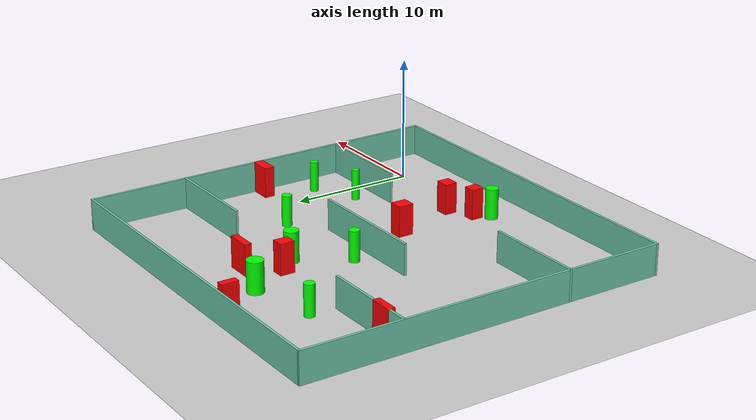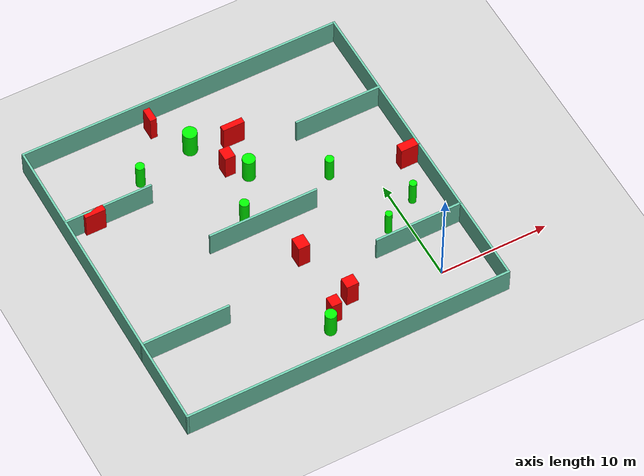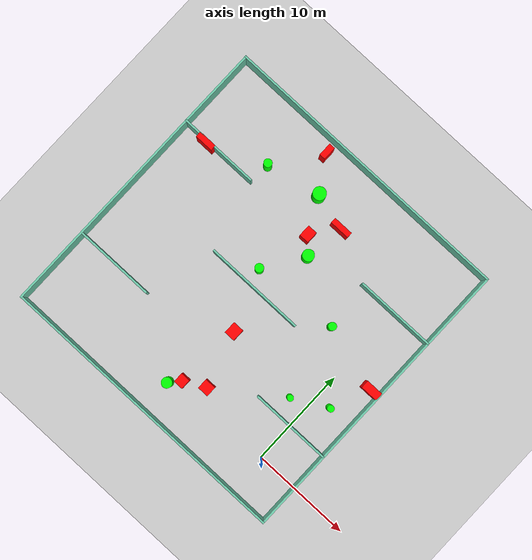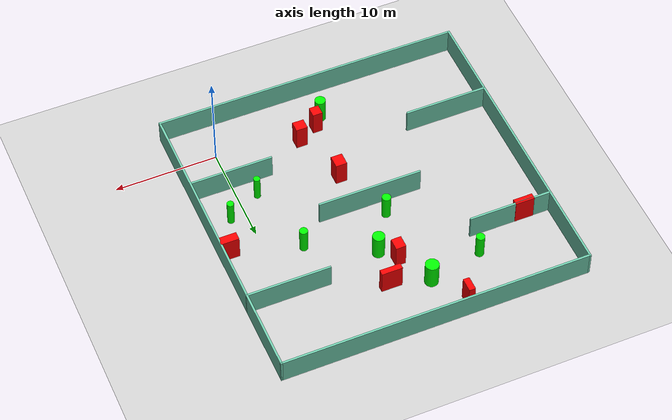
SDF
<sdf version="1.7">
 <world name="default">
  <light name="sun" type="directional">
   <pose>0 0 10 0 -0 0</pose>
   <diffuse>0.8 0.8 0.8 1</diffuse>
   <specular>0.2 0.2 0.2 1</specular>
   <attenuation>
    <range>1000</range>
    <constant>0.9</constant>
    <linear>0.01</linear>
    <quadratic>0.001</quadratic>
   </attenuation>
   <direction>-0.5 0.1 -0.9</direction>
   <spot><inner_angle>0</inner_angle><outer_angle>0</outer_angle><falloff>0</falloff></spot>
  </light>
  <model name="ground_plane">
   <static>1</static>
   <link name="link">
    <collision name="collision">
     <geometry><plane><normal>0 0 1</normal><size>100 100</size></plane></geometry>
     <surface>
      <contact><collide_bitmask>65535</collide_bitmask></contact>
      <friction><ode><mu>100</mu><mu2>50</mu2></ode></friction>
     </surface>
    </collision>
    <visual name="visual">
     <cast_shadows>0</cast_shadows>
     <geometry><plane><normal>0 0 1</normal><size>100 100</size></plane></geometry>
     <material>
      <script><uri>file://media/materials/scripts/gazebo.material</uri><name>Gazebo/Grey</name></script>
     </material>
    </visual>
   </link>
  </model>
  <gravity>0 0 -9.8</gravity>
  <magnetic_field>6e-06 2.3e-05 -4.2e-05</magnetic_field>
  <atmosphere type="adiabatic"/>
  <physics type="ode">
   <max_step_size>0.001</max_step_size>
   <real_time_factor>1</real_time_factor>
   <real_time_update_rate>1000</real_time_update_rate>
  </physics>
  <scene><ambient>0.4 0.4 0.4 1</ambient><background>0.7 0.7 0.7 1</background><shadows>1</shadows></scene>
  <spherical_coordinates>
   <surface_model>EARTH_WGS84</surface_model>
   <latitude_deg>0</latitude_deg>
   <longitude_deg>0</longitude_deg>
   <elevation>0</elevation>
   <heading_deg>0</heading_deg>
  </spherical_coordinates>
  <model name="my_base_walls">
   <link name="Wall_10">
    <collision name="Wall_10_Collision">
     <geometry><box><size>8.2 0.2 2.5</size></box></geometry>
     <pose>0 0 1.25 0 -0 0</pose>
    </collision>
    <visual name="Wall_10_Visual">
     <pose>0 0 1.25 0 -0 0</pose>
     <geometry><box><size>8.2 0.2 2.5</size></box></geometry>
     <material>
      <script><uri>file://media/materials/scripts/gazebo.material</uri><name>Gazebo/Grey</name></script>
      <ambient>0.435294 0.796078 0.67451 1</ambient>
     </material>
     <meta><layer>0</layer></meta>
    </visual>
    <pose>-11 -7 0 0 -0 0</pose>
   </link>
   <link name="Wall_12">
    <collision name="Wall_12_Collision">
     <geometry><box><size>8.2 0.2 2.5</size></box></geometry>
     <pose>0 0 1.25 0 -0 0</pose>
    </collision>
    <visual name="Wall_12_Visual">
     <pose>0 0 1.25 0 -0 0</pose>
     <geometry><box><size>8.2 0.2 2.5</size></box></geometry>
     <material>
      <script><uri>file://media/materials/scripts/gazebo.material</uri><name>Gazebo/Grey</name></script>
      <ambient>0.435294 0.796078 0.67451 1</ambient>
     </material>
     <meta><layer>0</layer></meta>
    </visual>
    <pose>-11 7 0 0 -0 0</pose>
   </link>
   <link name="Wall_14">
    <collision name="Wall_14_Collision">
     <geometry><box><size>8.2 0.2 2.5</size></box></geometry>
     <pose>0 0 1.25 0 -0 0</pose>
    </collision>
    <visual name="Wall_14_Visual">
     <pose>0 0 1.25 0 -0 0</pose>
     <geometry><box><size>8.2 0.2 2.5</size></box></geometry>
     <material>
      <script><uri>file://media/materials/scripts/gazebo.material</uri><name>Gazebo/Grey</name></script>
      <ambient>0.435294 0.796078 0.67451 1</ambient>
     </material>
     <meta><layer>0</layer></meta>
    </visual>
    <pose>11 7 0 0 -0 3.14159</pose>
   </link>
   <link name="Wall_16">
    <collision name="Wall_16_Collision">
     <geometry><box><size>10.2 0.2 2.5</size></box></geometry>
     <pose>0 0 1.25 0 -0 0</pose>
    </collision>
    <visual name="Wall_16_Visual">
     <pose>0 0 1.25 0 -0 0</pose>
     <geometry><box><size>10.2 0.2 2.5</size></box></geometry>
     <material>
      <script><uri>file://media/materials/scripts/gazebo.material</uri><name>Gazebo/Grey</name></script>
      <ambient>0.435294 0.796078 0.67451 1</ambient>
     </material>
     <meta><layer>0</layer></meta>
    </visual>
    <pose>0 0 0 0 -0 3.14159</pose>
   </link>
   <link name="Wall_2">
    <collision name="Wall_2_Collision">
     <geometry><box><size>30.2 0.2 2.5</size></box></geometry>
     <pose>0 0 1.25 0 -0 0</pose>
    </collision>
    <visual name="Wall_2_Visual">
     <pose>0 0 1.25 0 -0 0</pose>
     <geometry><box><size>30.2 0.2 2.5</size></box></geometry>
     <material>
      <script><uri>file://media/materials/scripts/gazebo.material</uri><name>Gazebo/Grey</name></script>
      <ambient>0.435294 0.796078 0.67451 1</ambient>
     </material>
     <meta><layer>0</layer></meta>
    </visual>
    <pose>0 -15 0 0 -0 3.14159</pose>
   </link>
   <link name="Wall_3">
    <collision name="Wall_3_Collision">
     <geometry><box><size>30.2 0.2 2.5</size></box></geometry>
     <pose>0 0 1.25 0 -0 0</pose>
    </collision>
    <visual name="Wall_3_Visual">
     <pose>0 0 1.25 0 -0 0</pose>
     <geometry><box><size>30.2 0.2 2.5</size></box></geometry>
     <material>
      <script><uri>file://media/materials/scripts/gazebo.material</uri><name>Gazebo/Grey</name></script>
      <ambient>0.435294 0.796078 0.67451 1</ambient>
     </material>
     <meta><layer>0</layer></meta>
    </visual>
    <pose>-15 0 0 0 -0 1.5708</pose>
   </link>
   <link name="Wall_4">
    <collision name="Wall_4_Collision">
     <geometry><box><size>30.2 0.2 2.5</size></box></geometry>
     <pose>0 0 1.25 0 -0 0</pose>
    </collision>
    <visual name="Wall_4_Visual">
     <pose>0 0 1.25 0 -0 0</pose>
     <geometry><box><size>30.2 0.2 2.5</size></box></geometry>
     <material>
      <script><uri>file://media/materials/scripts/gazebo.material</uri><name>Gazebo/Grey</name></script>
      <ambient>0.435294 0.796078 0.67451 1</ambient>
     </material>
     <meta><layer>0</layer></meta>
    </visual>
    <pose>0 15 0 0 -0 0</pose>
   </link>
   <link name="Wall_6">
    <collision name="Wall_6_Collision">
     <geometry><box><size>30.2 0.2 2.5</size></box></geometry>
     <pose>0 0 1.25 0 -0 0</pose>
    </collision>
    <visual name="Wall_6_Visual">
     <pose>0 0 1.25 0 -0 0</pose>
     <geometry><box><size>30.2 0.2 2.5</size></box></geometry>
     <material>
      <script><uri>file://media/materials/scripts/gazebo.material</uri><name>Gazebo/Grey</name></script>
      <ambient>0.435294 0.796078 0.67451 1</ambient>
     </material>
     <meta><layer>0</layer></meta>
    </visual>
    <pose>15 0 0 0 -0 1.5708</pose>
   </link>
   <link name="Wall_8">
    <collision name="Wall_8_Collision">
     <geometry><box><size>8.2 0.2 2.5</size></box></geometry>
     <pose>0 0 1.25 0 -0 0</pose>
    </collision>
    <visual name="Wall_8_Visual">
     <pose>0 0 1.25 0 -0 0</pose>
     <geometry><box><size>8.2 0.2 2.5</size></box></geometry>
     <material>
      <script><uri>file://media/materials/scripts/gazebo.material</uri><name>Gazebo/Grey</name></script>
      <ambient>0.435294 0.796078 0.67451 1</ambient>
     </material>
     <meta><layer>0</layer></meta>
    </visual>
    <pose>11 -7 0 0 -0 3.14159</pose>
   </link>
   <static>1</static>
   <pose>-11 11 0 0 -0 0</pose>
  </model>
  <model name="cylinder1">
   <static>1</static>
   <link name="link">
    <inertial>
     <mass>1</mass>
     <inertia><ixx>0.5</ixx><ixy>0</ixy><ixz>0</ixz><iyy>0.5</iyy><iyz>0</iyz><izz>1</izz></inertia>
    </inertial>
    <collision name="collision">
     <geometry><cylinder><radius>0.4150462923708825</radius><length>2.5</length></cylinder></geometry>
    </collision>
    <visual name="visual">
     <geometry><cylinder><radius>0.4150462923708825</radius><length>2.5</length></cylinder></geometry>
     <material>
      <ambient>0 1 0 1</ambient>
      <diffuse>0 1 0 1</diffuse>
      <specular>0.1 0.1 0.1 1</specular>
      <emissive>0 0 0 0</emissive>
     </material>
    </visual>
   </link>
   <pose>-17.876631563715815 20.205785137215663 1.25 0 0 0</pose>
  </model>
  <model name="cylinder2">
   <static>1</static>
   <link name="link">
    <inertial>
     <mass>1</mass>
     <inertia><ixx>0.5</ixx><ixy>0</ixy><ixz>0</ixz><iyy>0.5</iyy><iyz>0</iyz><izz>1</izz></inertia>
    </inertial>
    <collision name="collision">
     <geometry><cylinder><radius>0.5842694314424588</radius><length>2.5</length></cylinder></geometry>
    </collision>
    <visual name="visual">
     <geometry><cylinder><radius>0.5842694314424588</radius><length>2.5</length></cylinder></geometry>
     <material>
      <ambient>0 1 0 1</ambient>
      <diffuse>0 1 0 1</diffuse>
      <specular>0.1 0.1 0.1 1</specular>
      <emissive>0 0 0 0</emissive>
     </material>
    </visual>
   </link>
   <pose>-9.431394320272616 16.523343039427516 1.25 0 0 0</pose>
  </model>
  <model name="cylinder3">
   <static>1</static>
   <link name="link">
    <inertial>
     <mass>1</mass>
     <inertia><ixx>0.5</ixx><ixy>0</ixy><ixz>0</ixz><iyy>0.5</iyy><iyz>0</iyz><izz>1</izz></inertia>
    </inertial>
    <collision name="collision">
     <geometry><cylinder><radius>0.4308373132042005</radius><length>2.5</length></cylinder></geometry>
    </collision>
    <visual name="visual">
     <geometry><cylinder><radius>0.4308373132042005</radius><length>2.5</length></cylinder></geometry>
     <material>
      <ambient>0 1 0 1</ambient>
      <diffuse>0 1 0 1</diffuse>
      <specular>0.1 0.1 0.1 1</specular>
      <emissive>0 0 0 0</emissive>
     </material>
    </visual>
   </link>
   <pose>-11.928126649871848 12.640916426711389 1.25 0 0 0</pose>
  </model>
  <model name="cylinder4">
   <static>1</static>
   <link name="link">
    <inertial>
     <mass>1</mass>
     <inertia><ixx>0.5</ixx><ixy>0</ixy><ixz>0</ixz><iyy>0.5</iyy><iyz>0</iyz><izz>1</izz></inertia>
    </inertial>
    <collision name="collision">
     <geometry><cylinder><radius>0.5199881381414626</radius><length>2.5</length></cylinder></geometry>
    </collision>
    <visual name="visual">
     <geometry><cylinder><radius>0.5199881381414626</radius><length>2.5</length></cylinder></geometry>
     <material>
      <ambient>0 1 0 1</ambient>
      <diffuse>0 1 0 1</diffuse>
      <specular>0.1 0.1 0.1 1</specular>
      <emissive>0 0 0 0</emissive>
     </material>
    </visual>
   </link>
   <pose>-10.988245143462645 -0.710752221823876 1.25 0 0 0</pose>
  </model>
  <model name="cylinder5">
   <static>1</static>
   <link name="link">
    <inertial>
     <mass>1</mass>
     <inertia><ixx>0.5</ixx><ixy>0</ixy><ixz>0</ixz><iyy>0.5</iyy><iyz>0</iyz><izz>1</izz></inertia>
    </inertial>
    <collision name="collision">
     <geometry><cylinder><radius>0.4016017120620718</radius><length>2.5</length></cylinder></geometry>
    </collision>
    <visual name="visual">
     <geometry><cylinder><radius>0.4016017120620718</radius><length>2.5</length></cylinder></geometry>
     <material>
      <ambient>0 1 0 1</ambient>
      <diffuse>0 1 0 1</diffuse>
      <specular>0.1 0.1 0.1 1</specular>
      <emissive>0 0 0 0</emissive>
     </material>
    </visual>
   </link>
   <pose>-3.431341884445903 13.260597651454734 1.25 0 0 0</pose>
  </model>
  <model name="cylinder6">
   <static>1</static>
   <link name="link">
    <inertial>
     <mass>1</mass>
     <inertia><ixx>0.5</ixx><ixy>0</ixy><ixz>0</ixz><iyy>0.5</iyy><iyz>0</iyz><izz>1</izz></inertia>
    </inertial>
    <collision name="collision">
     <geometry><cylinder><radius>0.3169911839521447</radius><length>2.5</length></cylinder></geometry>
    </collision>
    <visual name="visual">
     <geometry><cylinder><radius>0.3169911839521447</radius><length>2.5</length></cylinder></geometry>
     <material>
      <ambient>0 1 0 1</ambient>
      <diffuse>0 1 0 1</diffuse>
      <specular>0.1 0.1 0.1 1</specular>
      <emissive>0 0 0 0</emissive>
     </material>
    </visual>
   </link>
   <pose>-1.831547065278091 5.89722857170017 1.25 0 0 0</pose>
  </model>
  <model name="cylinder7">
   <static>1</static>
   <link name="link">
    <inertial>
     <mass>1</mass>
     <inertia><ixx>0.5</ixx><ixy>0</ixy><ixz>0</ixz><iyy>0.5</iyy><iyz>0</iyz><izz>1</izz></inertia>
    </inertial>
    <collision name="collision">
     <geometry><cylinder><radius>0.33641635984394613</radius><length>2.5</length></cylinder></geometry>
    </collision>
    <visual name="visual">
     <geometry><cylinder><radius>0.33641635984394613</radius><length>2.5</length></cylinder></geometry>
     <material>
      <ambient>0 1 0 1</ambient>
      <diffuse>0 1 0 1</diffuse>
      <specular>0.1 0.1 0.1 1</specular>
      <emissive>0 0 0 0</emissive>
     </material>
    </visual>
   </link>
   <pose>1.5092528659520852 7.687339586094934 1.25 0 0 0</pose>
  </model>
  <model name="cylinder8">
   <static>1</static>
   <link name="link">
    <inertial>
     <mass>1</mass>
     <inertia><ixx>0.5</ixx><ixy>0</ixy><ixz>0</ixz><iyy>0.5</iyy><iyz>0</iyz><izz>1</izz></inertia>
    </inertial>
    <collision name="collision">
     <geometry><cylinder><radius>0.6559882161400743</radius><length>2.5</length></cylinder></geometry>
    </collision>
    <visual name="visual">
     <geometry><cylinder><radius>0.6559882161400743</radius><length>2.5</length></cylinder></geometry>
     <material>
      <ambient>0 1 0 1</ambient>
      <diffuse>0 1 0 1</diffuse>
      <specular>0.1 0.1 0.1 1</specular>
      <emissive>0 0 0 0</emissive>
     </material>
    </visual>
   </link>
   <pose>-12.526340733503268 21.36488847717921 1.25 0 0 0</pose>
  </model>
  <model name="box1">
   <static>1</static>
   <link name="link">
    <inertial>
     <mass>1</mass>
     <inertia><ixx>0.083</ixx><ixy>0</ixy><ixz>0</ixz><iyy>0.083</iyy><iyz>0</iyz><izz>0.083</izz></inertia>
    </inertial>
    <collision name="collision">
     <geometry><box><size>1.1227577344474713 1.050068365141705 2.5</size></box></geometry>
    </collision>
    <visual name="visual">
     <geometry><box><size>1.1227577344474713 1.050068365141705 2.5</size></box></geometry>
     <material>
      <ambient>1 0 0 1</ambient>
      <diffuse>1 0 0 1</diffuse>
      <specular>0.1 0.1 0.1 1</specular>
      <emissive>0 0 0 0</emissive>
     </material>
    </visual>
    <sensor name="my_contact" type="contact">
     <contact><collision>box_collision</collision><topic>__default_topic__</topic></contact>
    </sensor>
   </link>
   <pose>-8.019902174812627 1.4183875406825628 1.25 0 0 0</pose>
  </model>
  <model name="box2">
   <static>1</static>
   <link name="link">
    <inertial>
     <mass>1</mass>
     <inertia><ixx>0.083</ixx><ixy>0</ixy><ixz>0</ixz><iyy>0.083</iyy><iyz>0</iyz><izz>0.083</izz></inertia>
    </inertial>
    <collision name="collision">
     <geometry><box><size>0.9892121343066629 1.190944348268793 2.5</size></box></geometry>
    </collision>
    <visual name="visual">
     <geometry><box><size>0.9892121343066629 1.190944348268793 2.5</size></box></geometry>
     <material>
      <ambient>1 0 0 1</ambient>
      <diffuse>1 0 0 1</diffuse>
      <specular>0.1 0.1 0.1 1</specular>
      <emissive>0 0 0 0</emissive>
     </material>
    </visual>
    <sensor name="my_contact" type="contact">
     <contact><collision>box_collision</collision><topic>__default_topic__</topic></contact>
    </sensor>
   </link>
   <pose>-10.764305836756655 17.93659064839822 1.25 0 0 0</pose>
  </model>
  <model name="box3">
   <static>1</static>
   <link name="link">
    <inertial>
     <mass>1</mass>
     <inertia><ixx>0.083</ixx><ixy>0</ixy><ixz>0</ixz><iyy>0.083</iyy><iyz>0</iyz><izz>0.083</izz></inertia>
    </inertial>
    <collision name="collision">
     <geometry><box><size>0.6163574205879281 1.3577953227935797 2.5</size></box></geometry>
    </collision>
    <visual name="visual">
     <geometry><box><size>0.6163574205879281 1.3577953227935797 2.5</size></box></geometry>
     <material>
      <ambient>1 0 0 1</ambient>
      <diffuse>1 0 0 1</diffuse>
      <specular>0.1 0.1 0.1 1</specular>
      <emissive>0 0 0 0</emissive>
     </material>
    </visual>
    <sensor name="my_contact" type="contact">
     <contact><collision>box_collision</collision><topic>__default_topic__</topic></contact>
    </sensor>
   </link>
   <pose>-14.63347423870373 24.670145188270542 1.25 0 0 0</pose>
  </model>
  <model name="box4">
   <static>1</static>
   <link name="link">
    <inertial>
     <mass>1</mass>
     <inertia><ixx>0.083</ixx><ixy>0</ixy><ixz>0</ixz><iyy>0.083</iyy><iyz>0</iyz><izz>0.083</izz></inertia>
    </inertial>
    <collision name="collision">
     <geometry><box><size>1.877751802397195 0.5895205283727326 2.5</size></box></geometry>
    </collision>
    <visual name="visual">
     <geometry><box><size>1.877751802397195 0.5895205283727326 2.5</size></box></geometry>
     <material>
      <ambient>1 0 0 1</ambient>
      <diffuse>1 0 0 1</diffuse>
      <specular>0.1 0.1 0.1 1</specular>
      <emissive>0 0 0 0</emissive>
     </material>
    </visual>
    <sensor name="my_contact" type="contact">
     <contact><collision>box_collision</collision><topic>__default_topic__</topic></contact>
    </sensor>
   </link>
   <pose>-23.410058160119537 17.827705584021672 1.25 0 0 0</pose>
  </model>
  <model name="box5">
   <static>1</static>
   <link name="link">
    <inertial>
     <mass>1</mass>
     <inertia><ixx>0.083</ixx><ixy>0</ixy><ixz>0</ixz><iyy>0.083</iyy><iyz>0</iyz><izz>0.083</izz></inertia>
    </inertial>
    <collision name="collision">
     <geometry><box><size>2.0297178210043905 0.5573445837543137 2.5</size></box></geometry>
    </collision>
    <visual name="visual">
     <geometry><box><size>2.0297178210043905 0.5573445837543137 2.5</size></box></geometry>
     <material>
      <ambient>1 0 0 1</ambient>
      <diffuse>1 0 0 1</diffuse>
      <specular>0.1 0.1 0.1 1</specular>
      <emissive>0 0 0 0</emissive>
     </material>
    </visual>
    <sensor name="my_contact" type="contact">
     <contact><collision>box_collision</collision><topic>__default_topic__</topic></contact>
    </sensor>
   </link>
   <pose>-8.931127861970863 20.40943266359081 1.25 0 0 0</pose>
  </model>
  <model name="box6">
   <static>1</static>
   <link name="link">
    <inertial>
     <mass>1</mass>
     <inertia><ixx>0.083</ixx><ixy>0</ixy><ixz>0</ixz><iyy>0.083</iyy><iyz>0</iyz><izz>0.083</izz></inertia>
    </inertial>
    <collision name="collision">
     <geometry><box><size>0.9620678190413399 1.0197800774580332 2.5</size></box></geometry>
    </collision>
    <visual name="visual">
     <geometry><box><size>0.9620678190413399 1.0197800774580332 2.5</size></box></geometry>
     <material>
      <ambient>1 0 0 1</ambient>
      <diffuse>1 0 0 1</diffuse>
      <specular>0.1 0.1 0.1 1</specular>
      <emissive>0 0 0 0</emissive>
     </material>
    </visual>
    <sensor name="my_contact" type="contact">
     <contact><collision>box_collision</collision><topic>__default_topic__</topic></contact>
    </sensor>
   </link>
   <pose>-10.092018091902368 0.3339124359065435 1.25 0 0 0</pose>
  </model>
  <model name="box7">
   <static>1</static>
   <link name="link">
    <inertial>
     <mass>1</mass>
     <inertia><ixx>0.083</ixx><ixy>0</ixy><ixz>0</ixz><iyy>0.083</iyy><iyz>0</iyz><izz>0.083</izz></inertia>
    </inertial>
    <collision name="collision">
     <geometry><box><size>1.7471005487196196 0.8232952170230392 2.5</size></box></geometry>
    </collision>
    <visual name="visual">
     <geometry><box><size>1.7471005487196196 0.8232952170230392 2.5</size></box></geometry>
     <material>
      <ambient>1 0 0 1</ambient>
      <diffuse>1 0 0 1</diffuse>
      <specular>0.1 0.1 0.1 1</specular>
      <emissive>0 0 0 0</emissive>
     </material>
    </visual>
    <sensor name="my_contact" type="contact">
     <contact><collision>box_collision</collision><topic>__default_topic__</topic></contact>
    </sensor>
   </link>
   <pose>3.135763961244706 11.413200431776973 1.25 0 0 0</pose>
  </model>
  <model name="box8">
   <static>1</static>
   <link name="link">
    <inertial>
     <mass>1</mass>
     <inertia><ixx>0.083</ixx><ixy>0</ixy><ixz>0</ixz><iyy>0.083</iyy><iyz>0</iyz><izz>0.083</izz></inertia>
    </inertial>
    <collision name="collision">
     <geometry><box><size>1.0990859304561431 1.2526646536719768 2.5</size></box></geometry>
    </collision>
    <visual name="visual">
     <geometry><box><size>1.0990859304561431 1.2526646536719768 2.5</size></box></geometry>
     <material>
      <ambient>1 0 0 1</ambient>
      <diffuse>1 0 0 1</diffuse>
      <specular>0.1 0.1 0.1 1</specular>
      <emissive>0 0 0 0</emissive>
     </material>
    </visual>
    <sensor name="my_contact" type="contact">
     <contact><collision>box_collision</collision><topic>__default_topic__</topic></contact>
    </sensor>
   </link>
   <pose>-9.684758351025195 6.841625410763147 1.25 0 0 0</pose>
  </model>
 </world>
</sdf>
